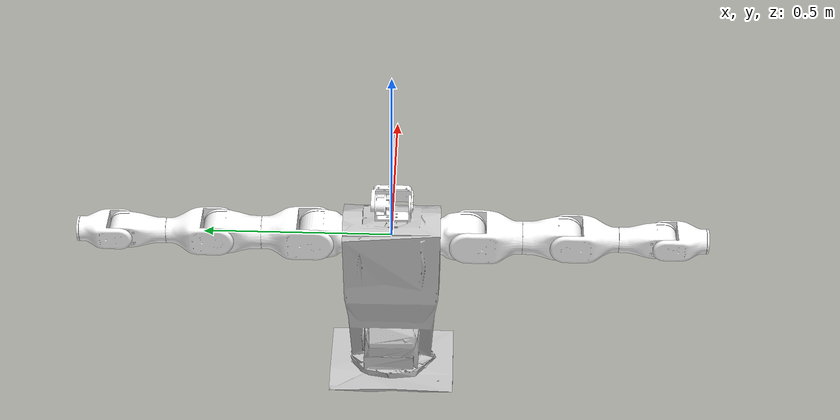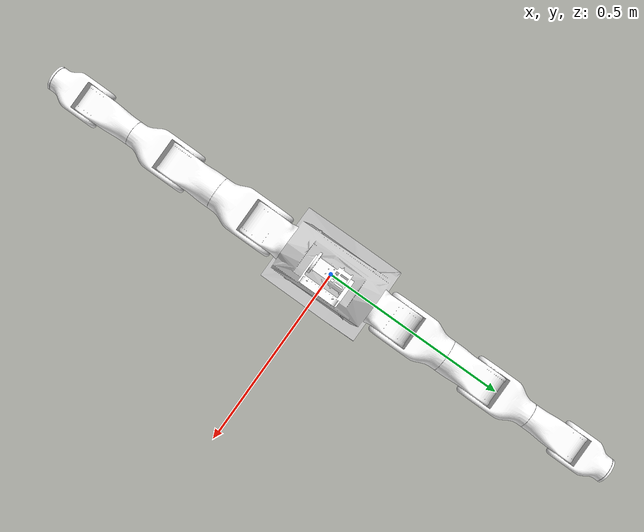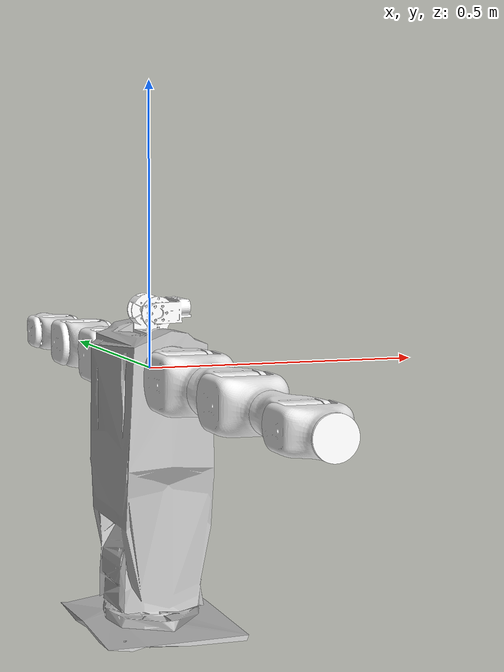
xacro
<?xml version="1.0"?>
<robot xmlns:xacro="http://www.ros.org/wiki/xacro" name="shu_pr03">
    <xacro:arg name="initial_positions_file" default="initial_positions.yaml" />

    <!-- Import shu_pr03 urdf file -->
    <xacro:include filename="$(find erob_description)/urdf/erob.urdf" />

    <!-- Import control_xacro -->
    <xacro:include filename="shu_pr03.ros2_control.xacro" />

    <xacro:shu_pr03_ros2_control name="FakeSystem" initial_positions_file="$(arg initial_positions_file)"/>

</robot>

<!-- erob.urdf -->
<robot
  name="shu_pr03">
  <link
    name="base_link">
    <inertial>
      <origin
        xyz="0.000142803043263029 0.00257226900961791 -0.253491641440473"
        rpy="0 0 0" />
      <mass
        value="3.81243011908748" />
      <inertia
        ixx="0.0367037993908777"
        ixy="-3.00717250100034E-05"
        ixz="8.04545647630551E-07"
        iyy="0.0335739186517586"
        iyz="-1.07903733887167E-05"
        izz="0.0242460999448266" />
    </inertial>
    <visual>
      <origin
        xyz="0 0 0"
        rpy="0 0 0" />
      <geometry>
        <mesh
          filename="package://erob_description/meshes/base_link.STL" />
      </geometry>
      <material
        name="">
        <color
          rgba="0.752941176470588 0.752941176470588 0.752941176470588 1" />
      </material>
    </visual>
    <collision>
      <origin
        xyz="0 0 0"
        rpy="0 0 0" />
      <geometry>
        <mesh
          filename="package://erob_description/meshes/base_link_low.STL" />
      </geometry>
    </collision>
  </link>
  <link
    name="L_shoulder_1">
    <inertial>
      <origin
        xyz="-0.0316495841873101 0.0876970351324887 1.03954945596119E-07"
        rpy="0 0 0" />
      <mass
        value="0.0583662127067442" />
      <inertia
        ixx="8.70454107176563E-05"
        ixy="-4.49418533441545E-07"
        ixz="1.30502333237381E-11"
        iyy="5.83722225921585E-05"
        iyz="9.05520067421455E-11"
        izz="3.91504682187357E-05" />
    </inertial>
    <visual>
      <origin
        xyz="0 0 0"
        rpy="0 0 0" />
      <geometry>
        <mesh
          filename="package://erob_description/meshes/L_shoulder_1.STL" />
      </geometry>
      <material
        name="">
        <color
          rgba="1 1 1 1" />
      </material>
    </visual>
    <collision>
      <origin
        xyz="0 0 0"
        rpy="0 0 0" />
      <geometry>
        <mesh
          filename="package://erob_description/meshes/L_shoulder_1_low.STL" />
      </geometry>
    </collision>
  </link>
  <joint
    name="L_Joint_1"
    type="revolute">
    <origin
      xyz="0 0.12125 0"
      rpy="0 0 0" />
    <parent
      link="base_link" />
    <child
      link="L_shoulder_1" />
    <axis
      xyz="0 1 0" />
    <limit
      lower="-3.14"
      upper="3.14"
      effort="10"
      velocity="1" />
  </joint>
  <link
    name="L_shoulder_2">
    <inertial>
      <origin
        xyz="-0.000806846308950948 7.19790532838216E-06 -0.0541256547821431"
        rpy="0 0 0" />
      <mass
        value="0.354884998531738" />
      <inertia
        ixx="0.000926057022235404"
        ixy="9.38158254254901E-09"
        ixz="-0.000203502930755037"
        iyy="0.00101553381091218"
        iyz="1.50040428638811E-08"
        izz="0.00072160188389543" />
    </inertial>
    <visual>
      <origin
        xyz="0 0 0"
        rpy="0 0 0" />
      <geometry>
        <mesh
          filename="package://erob_description/meshes/L_shoulder_2.STL" />
      </geometry>
      <material
        name="">
        <color
          rgba="1 1 1 1" />
      </material>
    </visual>
    <collision>
      <origin
        xyz="0 0 0"
        rpy="0 0 0" />
      <geometry>
        <mesh
          filename="package://erob_description/meshes/L_shoulder_2_low.STL" />
      </geometry>
    </collision>
  </link>
  <joint
    name="L_Joint_2"
    type="revolute">
    <origin
      xyz="0 0.07875 0"
      rpy="1.5708 0 0" />
    <parent
      link="L_shoulder_1" />
    <child
      link="L_shoulder_2" />
    <axis
      xyz="1 0 0" />
    <limit
      lower="-1.57"
      upper="1.57"
      effort="10"
      velocity="1" />
  </joint>
  <link
    name="L_shoulder_3">
    <inertial>
      <origin
        xyz="-0.028173948373643 3.12268663857362E-07 -0.120975211869893"
        rpy="0 0 0" />
      <mass
        value="0.0451397306440301" />
      <inertia
        ixx="5.44670832775202E-05"
        ixy="4.04285673310756E-11"
        ixz="-2.38081150868617E-08"
        iyy="2.57895714674165E-05"
        iyz="-2.1284511486762E-10"
        izz="3.62117382012054E-05" />
    </inertial>
    <visual>
      <origin
        xyz="0 0 0"
        rpy="0 0 0" />
      <geometry>
        <mesh
          filename="package://erob_description/meshes/L_shoulder_3.STL" />
      </geometry>
      <material
        name="">
        <color
          rgba="1 1 1 1" />
      </material>
    </visual>
    <collision>
      <origin
        xyz="0 0 0"
        rpy="0 0 0" />
      <geometry>
        <mesh
          filename="package://erob_description/meshes/L_shoulder_3_low.STL" />
      </geometry>
    </collision>
  </link>
  <joint
    name="L_Joint_3"
    type="revolute">
    <origin
      xyz="0 0 -0.14525"
      rpy="0 0 0" />
    <parent
      link="L_shoulder_2" />
    <child
      link="L_shoulder_3" />
    <axis
      xyz="0 0 -1" />
    <limit
      lower="-3.14"
      upper="3.14"
      effort="10"
      velocity="1" />
  </joint>
  <link
    name="L_elbow">
    <inertial>
      <origin
        xyz="0.00255124883417135 5.18567959731375E-06 -0.0523161872028072"
        rpy="0 0 0" />
      <mass
        value="0.275804426908576" />
      <inertia
        ixx="0.000592384378540585"
        ixy="3.67649594757611E-09"
        ixz="-0.000137373682701266"
        iyy="0.000667954025206023"
        iyz="-4.00030218684643E-08"
        izz="0.000454311050303624" />
    </inertial>
    <visual>
      <origin
        xyz="0 0 0"
        rpy="0 0 0" />
      <geometry>
        <mesh
          filename="package://erob_description/meshes/L_elbow.STL" />
      </geometry>
      <material
        name="">
        <color
          rgba="1 1 1 1" />
      </material>
    </visual>
    <collision>
      <origin
        xyz="0 0 0"
        rpy="0 0 0" />
      <geometry>
        <mesh
          filename="package://erob_description/meshes/L_elbow_low.STL" />
      </geometry>
    </collision>
  </link>
  <joint
    name="L_Joint_4"
    type="revolute">
    <origin
      xyz="-0.0002495 0 -0.11475"
      rpy="0 0 0" />
    <parent
      link="L_shoulder_3" />
    <child
      link="L_elbow" />
    <axis
      xyz="1 0 0" />
    <limit
      lower="-1.57"
      upper="1.57"
      effort="10"
      velocity="1" />
  </joint>
  <link
    name="L_wrist_1">
    <inertial>
      <origin
        xyz="0.00201199076396236 5.328605041377E-07 -0.0673661823854693"
        rpy="0 0 0" />
      <mass
        value="0.160243674417616" />
      <inertia
        ixx="0.000270966474156959"
        ixy="-6.76953685935804E-09"
        ixz="3.15040567153945E-05"
        iyy="0.000284325340159115"
        iyz="-6.27256128806016E-09"
        izz="0.00017185870892482" />
    </inertial>
    <visual>
      <origin
        xyz="0 0 0"
        rpy="0 0 0" />
      <geometry>
        <mesh
          filename="package://erob_description/meshes/L_wrist_1.STL" />
      </geometry>
      <material
        name="">
        <color
          rgba="1 1 1 1" />
      </material>
    </visual>
    <collision>
      <origin
        xyz="0 0 0"
        rpy="0 0 0" />
      <geometry>
        <mesh
          filename="package://erob_description/meshes/L_wrist_1_low.STL" />
      </geometry>
    </collision>
  </link>
  <joint
    name="L_Joint_5"
    type="revolute">
    <origin
      xyz="0.0002495 0 -0.13925"
      rpy="0 0 0" />
    <parent
      link="L_elbow" />
    <child
      link="L_wrist_1" />
    <axis
      xyz="0 0 -1" />
    <limit
      lower="-3.14"
      upper="3.14"
      effort="10"
      velocity="1" />
  </joint>
  <link
    name="L_wrist_2">
    <inertial>
      <origin
        xyz="0.000131983503963817 2.03138850603246E-06 -0.0435857234048572"
        rpy="0 0 0" />
      <mass
        value="0.149600926579204" />
      <inertia
        ixx="0.000210216664542335"
        ixy="1.89625011418256E-08"
        ixz="-5.4258220312466E-05"
        iyy="0.000270899860229319"
        iyz="3.9500151112895E-08"
        izz="0.000198572811784655" />
    </inertial>
    <visual>
      <origin
        xyz="0 0 0"
        rpy="0 0 0" />
      <geometry>
        <mesh
          filename="package://erob_description/meshes/L_wrist_2.STL" />
      </geometry>
      <material
        name="">
        <color
          rgba="1 1 1 1" />
      </material>
    </visual>
    <collision>
      <origin
        xyz="0 0 0"
        rpy="0 0 0" />
      <geometry>
        <mesh
          filename="package://erob_description/meshes/L_wrist_2_low.STL" />
      </geometry>
    </collision>
  </link>
  <joint
    name="L_Joint_6"
    type="revolute">
    <origin
      xyz="0 0 -0.12075"
      rpy="0 0 0" />
    <parent
      link="L_wrist_1" />
    <child
      link="L_wrist_2" />
    <axis
      xyz="1 0 0" />
    <limit
      lower="-1.57"
      upper="1.57"
      effort="10"
      velocity="1" />
  </joint>
  <link
    name="L_wrist_3">
    <inertial>
      <origin
        xyz="-6.26653728907911E-11 -2.41230507791457E-11 -0.00299999999557188"
        rpy="0 0 0" />
      <mass
        value="0.0171059719987964" />
      <inertia
        ixx="4.69273831833649E-06"
        ixy="1.86115953368793E-23"
        ixz="2.81982774112557E-17"
        iyy="4.69273831833649E-06"
        iyz="5.00531691662904E-18"
        izz="9.31420175334466E-06" />
    </inertial>
    <visual>
      <origin
        xyz="0 0 0"
        rpy="0 0 0" />
      <geometry>
        <mesh
          filename="package://erob_description/meshes/L_wrist_3.STL" />
      </geometry>
      <material
        name="">
        <color
          rgba="1 1 1 1" />
      </material>
    </visual>
    <collision>
      <origin
        xyz="0 0 0"
        rpy="0 0 0" />
      <geometry>
        <mesh
          filename="package://erob_description/meshes/L_wrist_3_low.STL" />
      </geometry>
    </collision>
  </link>
  <joint
    name="L_Joint_7"
    type="revolute">
    <origin
      xyz="0 0 -0.1105"
      rpy="0 0 0" />
    <parent
      link="L_wrist_2" />
    <child
      link="L_wrist_3" />
    <axis
      xyz="0 0 -1" />
    <limit
      lower="-3.14"
      upper="3.14"
      effort="10"
      velocity="1" />
  </joint>
  <link
    name="R_shoulder_1">
    <inertial>
      <origin
        xyz="-0.0316495845531163 -0.0876970349353597 -1.03926649175357E-07"
        rpy="0 0 0" />
      <mass
        value="0.0583662127067446" />
      <inertia
        ixx="8.70454107214253E-05"
        ixy="4.49418413216039E-07"
        ixz="-1.30502294074232E-11"
        iyy="5.83722225883896E-05"
        iyz="9.05520072453197E-11"
        izz="3.91504682187357E-05" />
    </inertial>
    <visual>
      <origin
        xyz="0 0 0"
        rpy="0 0 0" />
      <geometry>
        <mesh
          filename="package://erob_description/meshes/R_shoulder_1.STL" />
      </geometry>
      <material
        name="">
        <color
          rgba="1 1 1 1" />
      </material>
    </visual>
    <collision>
      <origin
        xyz="0 0 0"
        rpy="0 0 0" />
      <geometry>
        <mesh
          filename="package://erob_description/meshes/R_shoulder_1_low.STL" />
      </geometry>
    </collision>
  </link>
  <joint
    name="R_Joint_1"
    type="revolute">
    <origin
      xyz="0 -0.12125 0"
      rpy="0 0 0" />
    <parent
      link="base_link" />
    <child
      link="R_shoulder_1" />
    <axis
      xyz="0 -1 0" />
    <limit
      lower="-3.14"
      upper="3.14"
      effort="10"
      velocity="1" />
  </joint>
  <link
    name="R_shoulder_2">
    <inertial>
      <origin
        xyz="-0.000806846416427642 7.19800235104984E-06 -0.0541256548563906"
        rpy="0 0 0" />
      <mass
        value="0.354884999822818" />
      <inertia
        ixx="0.000926057022187813"
        ixy="9.38288628750575E-09"
        ixz="-0.000203502931355258"
        iyy="0.00101553381179031"
        iyz="1.50040214128084E-08"
        izz="0.000721601884814612" />
    </inertial>
    <visual>
      <origin
        xyz="0 0 0"
        rpy="0 0 0" />
      <geometry>
        <mesh
          filename="package://erob_description/meshes/R_shoulder_2.STL" />
      </geometry>
      <material
        name="">
        <color
          rgba="1 1 1 1" />
      </material>
    </visual>
    <collision>
      <origin
        xyz="0 0 0"
        rpy="0 0 0" />
      <geometry>
        <mesh
          filename="package://erob_description/meshes/R_shoulder_2_low.STL" />
      </geometry>
    </collision>
  </link>
  <joint
    name="R_Joint_2"
    type="revolute">
    <origin
      xyz="0 -0.07875 0"
      rpy="-1.5708 0 0" />
    <parent
      link="R_shoulder_1" />
    <child
      link="R_shoulder_2" />
    <axis
      xyz="1 0 0" />
    <limit
      lower="-1.57"
      upper="1.57"
      effort="10"
      velocity="1" />
  </joint>
  <link
    name="R_shoulder_3">
    <inertial>
      <origin
        xyz="-0.0281739482816614 3.11148943221706E-07 -0.120975211873102"
        rpy="0 0 0" />
      <mass
        value="0.0451397306440303" />
      <inertia
        ixx="5.44670832775175E-05"
        ixy="4.157485512861E-11"
        ixz="-2.38081148537813E-08"
        iyy="2.57895714674199E-05"
        iyz="-2.12846066444746E-10"
        izz="3.62117382012045E-05" />
    </inertial>
    <visual>
      <origin
        xyz="0 0 0"
        rpy="0 0 0" />
      <geometry>
        <mesh
          filename="package://erob_description/meshes/R_shoulder_3.STL" />
      </geometry>
      <material
        name="">
        <color
          rgba="1 1 1 1" />
      </material>
    </visual>
    <collision>
      <origin
        xyz="0 0 0"
        rpy="0 0 0" />
      <geometry>
        <mesh
          filename="package://erob_description/meshes/R_shoulder_3_low.STL" />
      </geometry>
    </collision>
  </link>
  <joint
    name="R_Joint_3"
    type="revolute">
    <origin
      xyz="0 0 -0.14525"
      rpy="0 0 0" />
    <parent
      link="R_shoulder_2" />
    <child
      link="R_shoulder_3" />
    <axis
      xyz="0 0 -1" />
    <limit
      lower="-3.14"
      upper="3.14"
      effort="10"
      velocity="1" />
  </joint>
  <link
    name="R_elbow">
    <inertial>
      <origin
        xyz="0.00255124883380303 5.18568142449105E-06 -0.0523161872027784"
        rpy="0 0 0" />
      <mass
        value="0.275804426908586" />
      <inertia
        ixx="0.000592384378543926"
        ixy="3.67603954480181E-09"
        ixz="-0.000137373682699367"
        iyy="0.000667954025206063"
        iyz="-4.00038429506942E-08"
        izz="0.00045431105030028" />
    </inertial>
    <visual>
      <origin
        xyz="0 0 0"
        rpy="0 0 0" />
      <geometry>
        <mesh
          filename="package://erob_description/meshes/R_elbow.STL" />
      </geometry>
      <material
        name="">
        <color
          rgba="1 1 1 1" />
      </material>
    </visual>
    <collision>
      <origin
        xyz="0 0 0"
        rpy="0 0 0" />
      <geometry>
        <mesh
          filename="package://erob_description/meshes/R_elbow_low.STL" />
      </geometry>
    </collision>
  </link>
  <joint
    name="R_Joint_4"
    type="revolute">
    <origin
      xyz="-0.0002495 0 -0.11475"
      rpy="0 0 0" />
    <parent
      link="R_shoulder_3" />
    <child
      link="R_elbow" />
    <axis
      xyz="1 0 0" />
    <limit
      lower="-1.57"
      upper="1.57"
      effort="10"
      velocity="1" />
  </joint>
  <link
    name="R_wrist_1">
    <inertial>
      <origin
        xyz="0.00201199088857457 5.33015758530375E-07 -0.0673661823852247"
        rpy="0 0 0" />
      <mass
        value="0.160243674417618" />
      <inertia
        ixx="0.00027096647415698"
        ixy="-6.77031216076525E-09"
        ixz="3.15040567169794E-05"
        iyy="0.000284325340158321"
        iyz="-6.27074200130867E-09"
        izz="0.0001718587089256" />
    </inertial>
    <visual>
      <origin
        xyz="0 0 0"
        rpy="0 0 0" />
      <geometry>
        <mesh
          filename="package://erob_description/meshes/R_wrist_1.STL" />
      </geometry>
      <material
        name="">
        <color
          rgba="1 1 1 1" />
      </material>
    </visual>
    <collision>
      <origin
        xyz="0 0 0"
        rpy="0 0 0" />
      <geometry>
        <mesh
          filename="package://erob_description/meshes/R_wrist_1_low.STL" />
      </geometry>
    </collision>
  </link>
  <joint
    name="R_Joint_5"
    type="revolute">
    <origin
      xyz="0.0002495 0 -0.13925"
      rpy="0 0 0" />
    <parent
      link="R_elbow" />
    <child
      link="R_wrist_1" />
    <axis
      xyz="0 0 -1" />
    <limit
      lower="-3.14"
      upper="3.14"
      effort="10"
      velocity="1" />
  </joint>
  <link
    name="R_wrist_2">
    <inertial>
      <origin
        xyz="0.000131988425529694 2.03501598999845E-06 -0.0435857248604233"
        rpy="0 0 0" />
      <mass
        value="0.149600947448649" />
      <inertia
        ixx="0.000210216676861299"
        ixy="1.89466849564258E-08"
        ixz="-5.42582200545982E-05"
        iyy="0.000270899872367118"
        iyz="3.94998703749154E-08"
        izz="0.000198572842391198" />
    </inertial>
    <visual>
      <origin
        xyz="0 0 0"
        rpy="0 0 0" />
      <geometry>
        <mesh
          filename="package://erob_description/meshes/R_wrist_2.STL" />
      </geometry>
      <material
        name="">
        <color
          rgba="1 1 1 1" />
      </material>
    </visual>
    <collision>
      <origin
        xyz="0 0 0"
        rpy="0 0 0" />
      <geometry>
        <mesh
          filename="package://erob_description/meshes/R_wrist_2_low.STL" />
      </geometry>
    </collision>
  </link>
  <joint
    name="R_Joint_6"
    type="revolute">
    <origin
      xyz="0 0 -0.12075"
      rpy="0 0 0" />
    <parent
      link="R_wrist_1" />
    <child
      link="R_wrist_2" />
    <axis
      xyz="1 0 0" />
    <limit
      lower="-1.57"
      upper="1.57"
      effort="10"
      velocity="1" />
  </joint>
  <link
    name="R_wrist_3">
    <inertial>
      <origin
        xyz="3.68952207674411E-09 -2.66239252866285E-11 -0.00300000081465168"
        rpy="0 0 0" />
      <mass
        value="0.0171059719987964" />
      <inertia
        ixx="4.69273831833649E-06"
        ixy="2.42639643798554E-23"
        ixz="-2.86013603914413E-17"
        iyy="4.69273831833649E-06"
        iyz="1.0902209969118E-15"
        izz="9.31420175334466E-06" />
    </inertial>
    <visual>
      <origin
        xyz="0 0 0"
        rpy="0 0 0" />
      <geometry>
        <mesh
          filename="package://erob_description/meshes/R_wrist_3.STL" />
      </geometry>
      <material
        name="">
        <color
          rgba="1 1 1 1" />
      </material>
    </visual>
    <collision>
      <origin
        xyz="0 0 0"
        rpy="0 0 0" />
      <geometry>
        <mesh
          filename="package://erob_description/meshes/R_wrist_3_low.STL" />
      </geometry>
    </collision>
  </link>
  <joint
    name="R_Joint_7"
    type="revolute">
    <origin
      xyz="0 0 -0.1105"
      rpy="0 0 0" />
    <parent
      link="R_wrist_2" />
    <child
      link="R_wrist_3" />
    <axis
      xyz="0 0 -1" />
    <limit
      lower="-3.14"
      upper="3.14"
      effort="10"
      velocity="1" />
  </joint>
  <link
    name="neck">
    <inertial>
      <origin
        xyz="-8.52810377871549E-10 0.0113276831075547 0.0286992085248887"
        rpy="0 0 0" />
      <mass
        value="0.0696595700882319" />
      <inertia
        ixx="5.01396904582493E-05"
        ixy="1.21732155996568E-12"
        ixz="-6.7633344896566E-13"
        iyy="3.39804568425215E-05"
        iyz="8.97794535172739E-06"
        izz="4.3485065566172E-05" />
    </inertial>
    <visual>
      <origin
        xyz="0 0 0"
        rpy="0 0 0" />
      <geometry>
        <mesh
          filename="package://erob_description/meshes/neck.STL" />
      </geometry>
      <material
        name="">
        <color
          rgba="1 1 1 1" />
      </material>
    </visual>
    <collision>
      <origin
        xyz="0 0 0"
        rpy="0 0 0" />
      <geometry>
        <mesh
          filename="package://erob_description/meshes/neck_low.STL" />
      </geometry>
    </collision>
  </link>
  <joint
    name="neck_joint"
    type="revolute">
    <origin
      xyz="0 0 0.0595"
      rpy="0 0 0" />
    <parent
      link="base_link" />
    <child
      link="neck" />
    <axis
      xyz="0 0 -1" />
    <limit
      lower="-1.5708"
      upper="1.5708"
      effort="10"
      velocity="1" />
  </joint>
  <link
    name="head">
    <inertial>
      <origin
        xyz="0.0381388417137068 0.00060642251132495 0.00387580812698762"
        rpy="0 0 0" />
      <mass
        value="0.0851674722464805" />
      <inertia
        ixx="7.90670828652549E-05"
        ixy="-1.26302309740786E-05"
        ixz="8.23134546885499E-07"
        iyy="2.20260286791449E-05"
        iyz="6.23762888522944E-07"
        izz="8.77106038481213E-05" />
    </inertial>
    <visual>
      <origin
        xyz="0 0 0"
        rpy="0 0 0" />
      <geometry>
        <mesh
          filename="package://erob_description/meshes/head.STL" />
      </geometry>
      <material
        name="">
        <color
          rgba="1 1 1 1" />
      </material>
    </visual>
    <collision>
      <origin
        xyz="0 0 0"
        rpy="0 0 0" />
      <geometry>
        <mesh
          filename="package://erob_description/meshes/head_low.STL" />
      </geometry>
    </collision>
  </link>
  <joint
    name="head_joint"
    type="revolute">
    <origin
      xyz="0 0 0.0405"
      rpy="0 0 0" />
    <parent
      link="neck" />
    <child
      link="head" />
    <axis
      xyz="0 -1 0" />
    <limit
      lower="0"
      upper="3.14159"
      effort="10"
      velocity="1" />
  </joint>
</robot>
